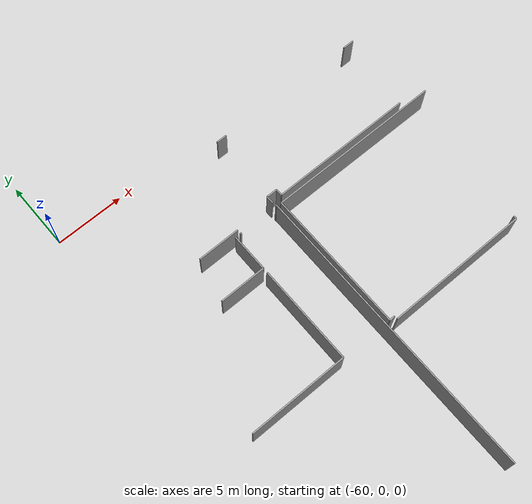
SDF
<sdf version="1.6">
 <world name="default">
  <model name="ground_plane">
   <static>1</static>
   <link name="link">
    <collision name="collision">
     <geometry><plane><normal>0 0 1</normal><size>100 100</size></plane></geometry>
     <surface><friction><ode><mu>100</mu><mu2>50</mu2></ode></friction></surface>
    </collision>
    <visual name="visual">
     <cast_shadows>0</cast_shadows>
     <geometry><plane><normal>0 0 1</normal><size>100 100</size></plane></geometry>
     <material>
      <script><uri>file://media/materials/scripts/gazebo.material</uri><name>Gazebo/Grey</name></script>
     </material>
    </visual>
   </link>
  </model>
  <model name="50015847">
   <static>1</static>
   <link name="Wall_1036">
    <collision name="Wall_1036_Collision">
     <geometry><box><size>10.3353332994 0.1 2.5</size></box></geometry>
     <pose>5.16766664972 0 1.25 0 0 0</pose>
    </collision>
    <visual name="Wall_1036_Visual">
     <pose>5.16766664972 0 1.25 0 0 0</pose>
     <geometry><box><size>10.3353332994 0.1 2.5</size></box></geometry>
     <material>
      <script><uri>file://media/materials/scripts/gazebo.material</uri><name>Gazebo/Grey</name></script>
      <ambient>1 1 1 1</ambient>
     </material>
    </visual>
    <pose>84.7256826155 -62.2967407332 0 0 0 1.57079632679</pose>
   </link>
   <link name="Wall_1037">
    <collision name="Wall_1037_Collision">
     <geometry><box><size>12.8092744191 0.1 2.5</size></box></geometry>
     <pose>6.40463720954 0 1.25 0 0 0</pose>
    </collision>
    <visual name="Wall_1037_Visual">
     <pose>6.40463720954 0 1.25 0 0 0</pose>
     <geometry><box><size>12.8092744191 0.1 2.5</size></box></geometry>
     <material>
      <script><uri>file://media/materials/scripts/gazebo.material</uri><name>Gazebo/Grey</name></script>
      <ambient>1 1 1 1</ambient>
     </material>
    </visual>
    <pose>84.7256826155 -51.9614074338 0 0 0 0.0</pose>
   </link>
   <link name="Wall_1045">
    <collision name="Wall_1045_Collision">
     <geometry><box><size>0.232623175878 0.1 2.5</size></box></geometry>
     <pose>0.116311587939 0 1.25 0 0 0</pose>
    </collision>
    <visual name="Wall_1045_Visual">
     <pose>0.116311587939 0 1.25 0 0 0</pose>
     <geometry><box><size>0.232623175878 0.1 2.5</size></box></geometry>
     <material>
      <script><uri>file://media/materials/scripts/gazebo.material</uri><name>Gazebo/Grey</name></script>
      <ambient>1 1 1 1</ambient>
     </material>
    </visual>
    <pose>95.5669395434 -62.2954695683 0 0 0 -1.57079632679</pose>
   </link>
   <link name="Wall_1046">
    <collision name="Wall_1046_Collision">
     <geometry><box><size>10.4319418315 0.1 2.5</size></box></geometry>
     <pose>5.21597091575 0 1.25 0 0 0</pose>
    </collision>
    <visual name="Wall_1046_Visual">
     <pose>5.21597091575 0 1.25 0 0 0</pose>
     <geometry><box><size>10.4319418315 0.1 2.5</size></box></geometry>
     <material>
      <script><uri>file://media/materials/scripts/gazebo.material</uri><name>Gazebo/Grey</name></script>
      <ambient>1 1 1 1</ambient>
     </material>
    </visual>
    <pose>95.5669395434 -62.5280927442 0 0 0 3.14159265359</pose>
   </link>
   <link name="Wall_1048">
    <collision name="Wall_1048_Collision">
     <geometry><box><size>0.409489469352 0.1 2.5</size></box></geometry>
     <pose>0.204744734676 0 1.25 0 0 0</pose>
    </collision>
    <visual name="Wall_1048_Visual">
     <pose>0.204744734676 0 1.25 0 0 0</pose>
     <geometry><box><size>0.409489469352 0.1 2.5</size></box></geometry>
     <material>
      <script><uri>file://media/materials/scripts/gazebo.material</uri><name>Gazebo/Grey</name></script>
      <ambient>1 1 1 1</ambient>
     </material>
    </visual>
    <pose>85.1349977119 -62.2847917832 0 0 0 -3.11240839544</pose>
   </link>
   <link name="Wall_1050">
    <collision name="Wall_1050_Collision">
     <geometry><box><size>0.122794528906 0.1 2.5</size></box></geometry>
     <pose>0.0613972644531 0 1.25 0 0 0</pose>
    </collision>
    <visual name="Wall_1050_Visual">
     <pose>0.0613972644531 0 1.25 0 0 0</pose>
     <geometry><box><size>0.122794528906 0.1 2.5</size></box></geometry>
     <material>
      <script><uri>file://media/materials/scripts/gazebo.material</uri><name>Gazebo/Grey</name></script>
      <ambient>1 1 1 1</ambient>
     </material>
    </visual>
    <pose>81.2917577668 -51.8937814613 0 0 0 0.0</pose>
   </link>
   <link name="Wall_1051">
    <collision name="Wall_1051_Collision">
     <geometry><box><size>0.074744495856 0.1 2.5</size></box></geometry>
     <pose>0.037372247928 0 1.25 0 0 0</pose>
    </collision>
    <visual name="Wall_1051_Visual">
     <pose>0.037372247928 0 1.25 0 0 0</pose>
     <geometry><box><size>0.074744495856 0.1 2.5</size></box></geometry>
     <material>
      <script><uri>file://media/materials/scripts/gazebo.material</uri><name>Gazebo/Grey</name></script>
      <ambient>1 1 1 1</ambient>
     </material>
    </visual>
    <pose>84.3100116947 -51.8937814613 0 0 0 0.0</pose>
   </link>
   <link name="Wall_1052">
    <collision name="Wall_1052_Collision">
     <geometry><box><size>21.6192098439 0.1 2.5</size></box></geometry>
     <pose>10.809604922 0 1.25 0 0 0</pose>
    </collision>
    <visual name="Wall_1052_Visual">
     <pose>10.809604922 0 1.25 0 0 0</pose>
     <geometry><box><size>21.6192098439 0.1 2.5</size></box></geometry>
     <material>
      <script><uri>file://media/materials/scripts/gazebo.material</uri><name>Gazebo/Grey</name></script>
      <ambient>1 1 1 1</ambient>
     </material>
    </visual>
    <pose>84.3847561906 -51.8937814613 0 0 0 -1.57079632679</pose>
   </link>
   <link name="Wall_1056">
    <collision name="Wall_1056_Collision">
     <geometry><box><size>2.71724208064 0.1 2.5</size></box></geometry>
     <pose>1.35862104032 0 1.25 0 0 0</pose>
    </collision>
    <visual name="Wall_1056_Visual">
     <pose>1.35862104032 0 1.25 0 0 0</pose>
     <geometry><box><size>2.71724208064 0.1 2.5</size></box></geometry>
     <material>
      <script><uri>file://media/materials/scripts/gazebo.material</uri><name>Gazebo/Grey</name></script>
      <ambient>1 1 1 1</ambient>
     </material>
    </visual>
    <pose>80.9340519652 -51.9253063507 0 0 0 -1.57079632679</pose>
   </link>
   <link name="Wall_1057">
    <collision name="Wall_1057_Collision">
     <geometry><box><size>3.39680683378 0.1 2.5</size></box></geometry>
     <pose>1.69840341689 0 1.25 0 0 0</pose>
    </collision>
    <visual name="Wall_1057_Visual">
     <pose>1.69840341689 0 1.25 0 0 0</pose>
     <geometry><box><size>3.39680683378 0.1 2.5</size></box></geometry>
     <material>
      <script><uri>file://media/materials/scripts/gazebo.material</uri><name>Gazebo/Grey</name></script>
      <ambient>1 1 1 1</ambient>
     </material>
    </visual>
    <pose>80.9340519652 -54.6425484314 0 0 0 3.14159265359</pose>
   </link>
   <link name="Wall_1066">
    <collision name="Wall_1066_Collision">
     <geometry><box><size>7.21640311181 0.1 2.5</size></box></geometry>
     <pose>3.60820155591 0 1.25 0 0 0</pose>
    </collision>
    <visual name="Wall_1066_Visual">
     <pose>3.60820155591 0 1.25 0 0 0</pose>
     <geometry><box><size>7.21640311181 0.1 2.5</size></box></geometry>
     <material>
      <script><uri>file://media/materials/scripts/gazebo.material</uri><name>Gazebo/Grey</name></script>
      <ambient>1 1 1 1</ambient>
     </material>
    </visual>
    <pose>80.9337977322 -55.0 0 0 0 -1.57079632679</pose>
   </link>
   <link name="Wall_1067">
    <collision name="Wall_1067_Collision">
     <geometry><box><size>7.25149241479 0.1 2.5</size></box></geometry>
     <pose>3.6257462074 0 1.25 0 0 0</pose>
    </collision>
    <visual name="Wall_1067_Visual">
     <pose>3.6257462074 0 1.25 0 0 0</pose>
     <geometry><box><size>7.25149241479 0.1 2.5</size></box></geometry>
     <material>
      <script><uri>file://media/materials/scripts/gazebo.material</uri><name>Gazebo/Grey</name></script>
      <ambient>1 1 1 1</ambient>
     </material>
    </visual>
    <pose>80.9337977322 -62.2164031118 0 0 0 3.14040063368</pose>
   </link>
   <link name="Wall_1109">
    <collision name="Wall_1109_Collision">
     <geometry><box><size>0.773122489449 0.1 2.5</size></box></geometry>
     <pose>0.386561244725 0 1.25 0 0 0</pose>
    </collision>
    <visual name="Wall_1109_Visual">
     <pose>0.386561244725 0 1.25 0 0 0</pose>
     <geometry><box><size>0.773122489449 0.1 2.5</size></box></geometry>
     <material>
      <script><uri>file://media/materials/scripts/gazebo.material</uri><name>Gazebo/Grey</name></script>
      <ambient>1 1 1 1</ambient>
     </material>
    </visual>
    <pose>84.3265368384 -45.8992220471 0 0 0 0.0</pose>
   </link>
   <link name="Wall_1115">
    <collision name="Wall_1115_Collision">
     <geometry><box><size>0.81252860121 0.1 2.5</size></box></geometry>
     <pose>0.406264300605 0 1.25 0 0 0</pose>
    </collision>
    <visual name="Wall_1115_Visual">
     <pose>0.406264300605 0 1.25 0 0 0</pose>
     <geometry><box><size>0.81252860121 0.1 2.5</size></box></geometry>
     <material>
      <script><uri>file://media/materials/scripts/gazebo.material</uri><name>Gazebo/Grey</name></script>
      <ambient>1 1 1 1</ambient>
     </material>
    </visual>
    <pose>95.5692276402 -45.9203233843 0 0 0 0.0</pose>
   </link>
   <link name="Wall_1257">
    <collision name="Wall_1257_Collision">
     <geometry><box><size>10.4934662124 0.1 2.5</size></box></geometry>
     <pose>5.24673310622 0 1.25 0 0 0</pose>
    </collision>
    <visual name="Wall_1257_Visual">
     <pose>5.24673310622 0 1.25 0 0 0</pose>
     <geometry><box><size>10.4934662124 0.1 2.5</size></box></geometry>
     <material>
      <script><uri>file://media/materials/scripts/gazebo.material</uri><name>Gazebo/Grey</name></script>
      <ambient>1 1 1 1</ambient>
     </material>
    </visual>
    <pose>95.5880408807 -51.5421772512 0 0 0 3.14159265359</pose>
   </link>
   <link name="Wall_1258">
    <collision name="Wall_1258_Collision">
     <geometry><box><size>0.499059337977 0.1 2.5</size></box></geometry>
     <pose>0.249529668989 0 1.25 0 0 0</pose>
    </collision>
    <visual name="Wall_1258_Visual">
     <pose>0.249529668989 0 1.25 0 0 0</pose>
     <geometry><box><size>0.499059337977 0.1 2.5</size></box></geometry>
     <material>
      <script><uri>file://media/materials/scripts/gazebo.material</uri><name>Gazebo/Grey</name></script>
      <ambient>1 1 1 1</ambient>
     </material>
    </visual>
    <pose>85.0945746682 -51.5421772512 0 0 0 1.57079632679</pose>
   </link>
   <link name="Wall_1259">
    <collision name="Wall_1259_Collision">
     <geometry><box><size>0.791427263945 0.1 2.5</size></box></geometry>
     <pose>0.395713631972 0 1.25 0 0 0</pose>
    </collision>
    <visual name="Wall_1259_Visual">
     <pose>0.395713631972 0 1.25 0 0 0</pose>
     <geometry><box><size>0.791427263945 0.1 2.5</size></box></geometry>
     <material>
      <script><uri>file://media/materials/scripts/gazebo.material</uri><name>Gazebo/Grey</name></script>
      <ambient>1 1 1 1</ambient>
     </material>
    </visual>
    <pose>85.0945746682 -51.0431179133 0 0 0 3.14159265359</pose>
   </link>
   <link name="Wall_1260">
    <collision name="Wall_1260_Collision">
     <geometry><box><size>0.549651700819 0.1 2.5</size></box></geometry>
     <pose>0.274825850409 0 1.25 0 0 0</pose>
    </collision>
    <visual name="Wall_1260_Visual">
     <pose>0.274825850409 0 1.25 0 0 0</pose>
     <geometry><box><size>0.549651700819 0.1 2.5</size></box></geometry>
     <material>
      <script><uri>file://media/materials/scripts/gazebo.material</uri><name>Gazebo/Grey</name></script>
      <ambient>1 1 1 1</ambient>
     </material>
    </visual>
    <pose>84.3031474043 -51.0431179133 0 0 0 -1.57079632679</pose>
   </link>
   <link name="Wall_1261">
    <collision name="Wall_1261_Collision">
     <geometry><box><size>3.11054049931 0.1 2.5</size></box></geometry>
     <pose>1.55527024966 0 1.25 0 0 0</pose>
    </collision>
    <visual name="Wall_1261_Visual">
     <pose>1.55527024966 0 1.25 0 0 0</pose>
     <geometry><box><size>3.11054049931 0.1 2.5</size></box></geometry>
     <material>
      <script><uri>file://media/materials/scripts/gazebo.material</uri><name>Gazebo/Grey</name></script>
      <ambient>1 1 1 1</ambient>
     </material>
    </visual>
    <pose>81.3517567499 -51.5927696141 0 0 0 3.14159265359</pose>
   </link>
   <pose>-132.35 43.9162226064 0 0 0 0</pose>
  </model>
 </world>
</sdf>
